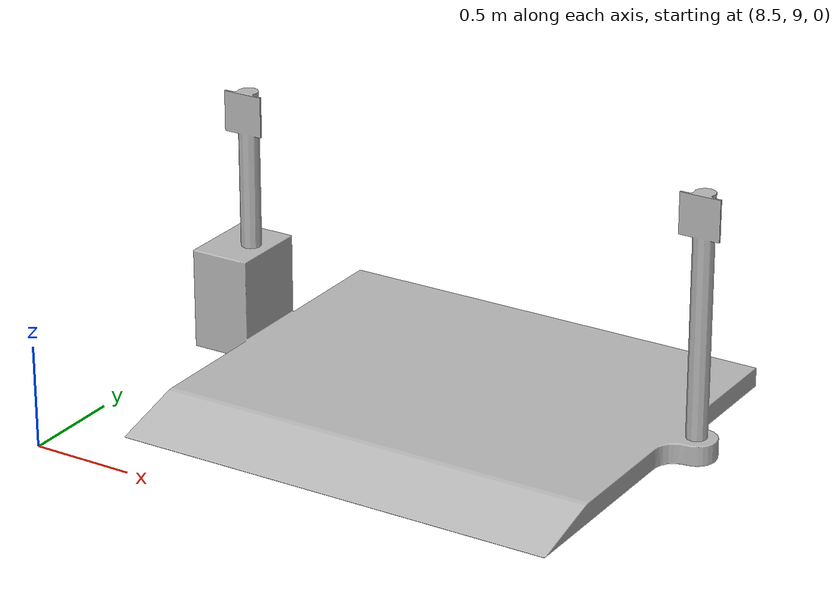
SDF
<sdf version='1.6'>
  <model name='dock_new'>
    <link name='dock_new'>
      <pose frame=''>0 0 0 0 -0 0</pose>
      <inertial>
        <pose frame=''>10 10.1084 0.098619 0 -0 0</pose>
        <mass>3778.9</mass>
        <inertia>
          <ixx>999.34</ixx>
          <ixy>47.546</ixy>
          <ixz>85.759</ixz>
          <iyy>2269.6</iyy>
          <iyz>21.978</iyz>
          <izz>3058.2</izz>
        </inertia>
      </inertial>
      <collision name='dock_new_collision'>
        <pose frame=''>10 10.1084 0.098619 1.5708 -0 0</pose>
        <geometry>
          <mesh>
            <scale>1 1 1</scale>
            <uri>model://dock_new/meshes/dock_new.dae</uri>
          </mesh>
        </geometry>
      </collision>
      <visual name='dock_new_visual'>
        <pose frame=''>10 10.1084 0.098619 1.5708 -0 0</pose>
        <geometry>
          <mesh>
            <scale>1 1 1</scale>
            <uri>model://dock_new/meshes/dock_new.dae</uri>
          </mesh>
        </geometry>
      </visual>
    </link>
  </model>
</sdf>
